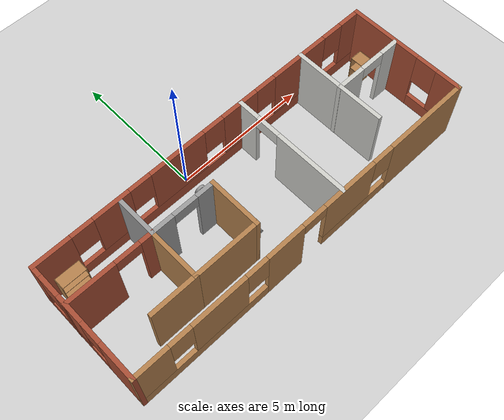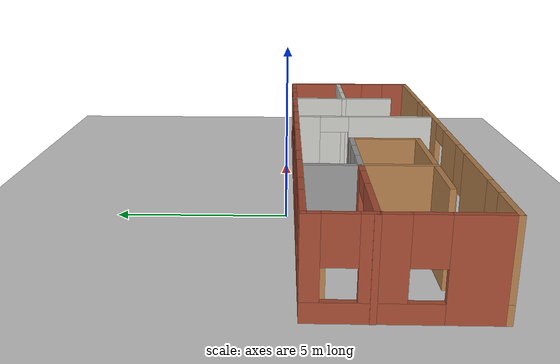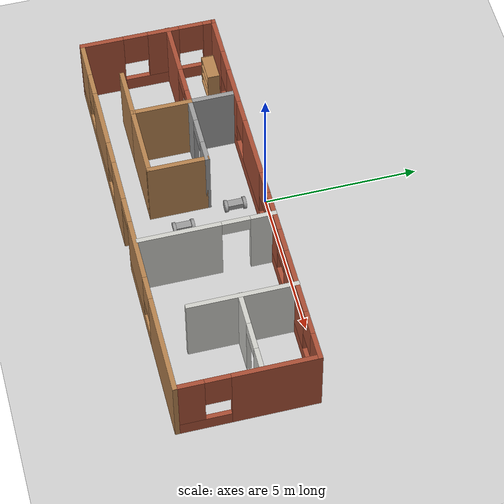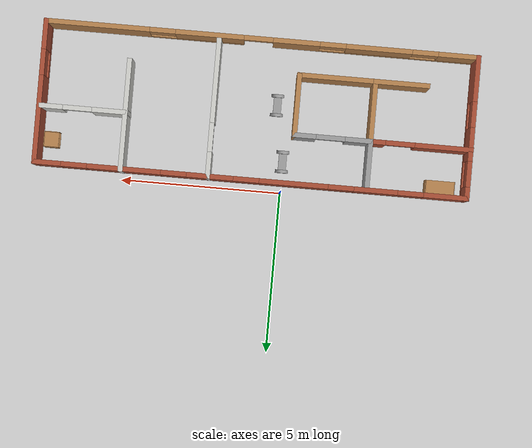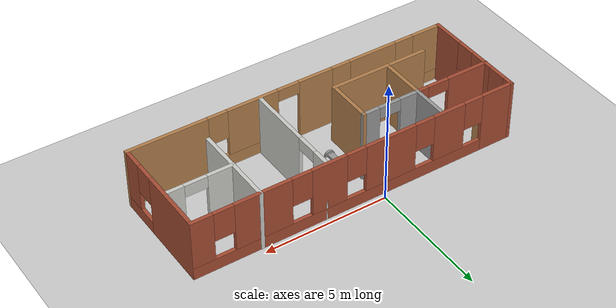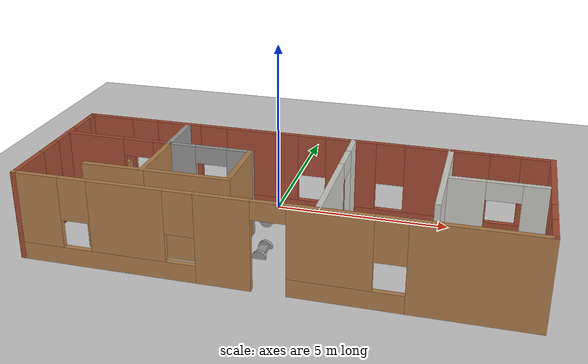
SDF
<sdf version="1.6">
 <world name="default">
  <plugin name="hello" filename="libhello.so"/>
  <light name="sun" type="directional">
   <pose>0 0 10 0 -0 0</pose>
   <diffuse>0.8 0.8 0.8 1</diffuse>
   <specular>0.2 0.2 0.2 1</specular>
   <attenuation>
    <range>1000</range>
    <constant>0.9</constant>
    <linear>0.01</linear>
    <quadratic>0.001</quadratic>
   </attenuation>
   <direction>-0.5 0.1 -0.9</direction>
  </light>
  <model name="ground_plane">
   <static>1</static>
   <link name="link">
    <collision name="collision">
     <geometry><plane><normal>0 0 1</normal><size>100 100</size></plane></geometry>
     <surface>
      <contact><collide_bitmask>65535</collide_bitmask></contact>
      <friction><ode><mu>100</mu><mu2>50</mu2></ode></friction>
     </surface>
    </collision>
    <visual name="visual">
     <cast_shadows>0</cast_shadows>
     <geometry><plane><normal>0 0 1</normal><size>100 100</size></plane></geometry>
     <material>
      <script><uri>file://media/materials/scripts/gazebo.material</uri><name>Gazebo/Grey</name></script>
     </material>
    </visual>
   </link>
  </model>
  <gravity>0 0 -9.8</gravity>
  <magnetic_field>6e-06 2.3e-05 -4.2e-05</magnetic_field>
  <atmosphere type="adiabatic"/>
  <physics name="default_physics" default="0" type="ode">
   <max_step_size>0.001</max_step_size>
   <real_time_factor>1</real_time_factor>
   <real_time_update_rate>1000</real_time_update_rate>
  </physics>
  <scene><ambient>0.4 0.4 0.4 1</ambient><background>0.7 0.7 0.7 1</background><shadows>1</shadows></scene>
  <spherical_coordinates>
   <surface_model>EARTH_WGS84</surface_model>
   <latitude_deg>0</latitude_deg>
   <longitude_deg>0</longitude_deg>
   <elevation>0</elevation>
   <heading_deg>0</heading_deg>
  </spherical_coordinates>
  <model name="building">
   <pose>0.94 -2.47 0 0 -0 0</pose>
   <link name="Wall_0">
    <pose>-6.67 -0.005 0 0 -0 1.5708</pose>
    <visual name="Wall_0_Visual_0">
     <pose>-1.5375 0 1.25 0 -0 0</pose>
     <geometry><box><size>1.425 0.15 2.5</size></box></geometry>
     <material>
      <script><uri>file://media/materials/scripts/gazebo.material</uri><name>Gazebo/Bricks</name></script>
      <ambient>0.435294 0.796078 0.67451 1</ambient>
     </material>
     <meta><layer>0</layer></meta>
    </visual>
    <collision name="Wall_0_Collision_0">
     <geometry><box><size>1.425 0.15 2.5</size></box></geometry>
     <pose>-1.5375 0 1.25 0 -0 0</pose>
    </collision>
    <visual name="Wall_0_Visual_1">
     <pose>0.7125 0 0.25 0 -0 0</pose>
     <geometry><box><size>3.075 0.15 0.5</size></box></geometry>
     <material>
      <script><uri>file://media/materials/scripts/gazebo.material</uri><name>Gazebo/Bricks</name></script>
      <ambient>0.435294 0.796078 0.67451 1</ambient>
     </material>
     <meta><layer>0</layer></meta>
    </visual>
    <collision name="Wall_0_Collision_1">
     <geometry><box><size>3.075 0.15 0.5</size></box></geometry>
     <pose>0.7125 0 0.25 0 -0 0</pose>
    </collision>
    <visual name="Wall_0_Visual_2">
     <pose>0.495 0 1.5 0 -0 0</pose>
     <geometry><box><size>1.04 0.15 2</size></box></geometry>
     <material>
      <script><uri>file://media/materials/scripts/gazebo.material</uri><name>Gazebo/Bricks</name></script>
      <ambient>0.435294 0.796078 0.67451 1</ambient>
     </material>
     <meta><layer>0</layer></meta>
    </visual>
    <collision name="Wall_0_Collision_2">
     <geometry><box><size>1.04 0.15 2</size></box></geometry>
     <pose>0.495 0 1.5 0 -0 0</pose>
    </collision>
    <visual name="Wall_0_Visual_3">
     <pose>2.0325 0 1.5 0 -0 0</pose>
     <geometry><box><size>0.435 0.15 2</size></box></geometry>
     <material>
      <script><uri>file://media/materials/scripts/gazebo.material</uri><name>Gazebo/Bricks</name></script>
      <ambient>0.435294 0.796078 0.67451 1</ambient>
     </material>
     <meta><layer>0</layer></meta>
    </visual>
    <collision name="Wall_0_Collision_3">
     <geometry><box><size>0.435 0.15 2</size></box></geometry>
     <pose>2.0325 0 1.5 0 -0 0</pose>
    </collision>
    <visual name="Wall_0_Visual_4">
     <pose>-0.425 0 1.9 0 -0 0</pose>
     <geometry><box><size>0.8 0.15 1.2</size></box></geometry>
     <material>
      <script><uri>file://media/materials/scripts/gazebo.material</uri><name>Gazebo/Bricks</name></script>
      <ambient>0.435294 0.796078 0.67451 1</ambient>
     </material>
     <meta><layer>0</layer></meta>
    </visual>
    <collision name="Wall_0_Collision_4">
     <geometry><box><size>0.8 0.15 1.2</size></box></geometry>
     <pose>-0.425 0 1.9 0 -0 0</pose>
    </collision>
    <visual name="Wall_0_Visual_5">
     <pose>1.415 0 1.9 0 -0 0</pose>
     <geometry><box><size>0.8 0.15 1.2</size></box></geometry>
     <material>
      <script><uri>file://media/materials/scripts/gazebo.material</uri><name>Gazebo/Bricks</name></script>
      <ambient>0.435294 0.796078 0.67451 1</ambient>
     </material>
     <meta><layer>0</layer></meta>
    </visual>
    <collision name="Wall_0_Collision_5">
     <geometry><box><size>0.8 0.15 1.2</size></box></geometry>
     <pose>1.415 0 1.9 0 -0 0</pose>
    </collision>
   </link>
   <link name="Wall_1">
    <pose>0.005 2.17 0 0 -0 0</pose>
    <visual name="Wall_1_Visual_0">
     <pose>-6.0475 0 1.25 0 -0 0</pose>
     <geometry><box><size>1.405 0.15 2.5</size></box></geometry>
     <material>
      <script><uri>file://media/materials/scripts/gazebo.material</uri><name>Gazebo/Bricks</name></script>
      <ambient>1 1 1 1</ambient>
     </material>
     <meta><layer>0</layer></meta>
    </visual>
    <collision name="Wall_1_Collision_0">
     <geometry><box><size>1.405 0.15 2.5</size></box></geometry>
     <pose>-6.0475 0 1.25 0 -0 0</pose>
    </collision>
    <visual name="Wall_1_Visual_1">
     <pose>0.7025 0 0.25 0 -0 0</pose>
     <geometry><box><size>12.095 0.15 0.5</size></box></geometry>
     <material>
      <script><uri>file://media/materials/scripts/gazebo.material</uri><name>Gazebo/Bricks</name></script>
      <ambient>1 1 1 1</ambient>
     </material>
     <meta><layer>0</layer></meta>
    </visual>
    <collision name="Wall_1_Collision_1">
     <geometry><box><size>12.095 0.15 0.5</size></box></geometry>
     <pose>0.7025 0 0.25 0 -0 0</pose>
    </collision>
    <visual name="Wall_1_Visual_2">
     <pose>-3.87 0 1.5 0 -0 0</pose>
     <geometry><box><size>1.35 0.15 2</size></box></geometry>
     <material>
      <script><uri>file://media/materials/scripts/gazebo.material</uri><name>Gazebo/Bricks</name></script>
      <ambient>1 1 1 1</ambient>
     </material>
     <meta><layer>0</layer></meta>
    </visual>
    <collision name="Wall_1_Collision_2">
     <geometry><box><size>1.35 0.15 2</size></box></geometry>
     <pose>-3.87 0 1.5 0 -0 0</pose>
    </collision>
    <visual name="Wall_1_Visual_3">
     <pose>-1.33 0 1.5 0 -0 0</pose>
     <geometry><box><size>2.13 0.15 2</size></box></geometry>
     <material>
      <script><uri>file://media/materials/scripts/gazebo.material</uri><name>Gazebo/Bricks</name></script>
      <ambient>1 1 1 1</ambient>
     </material>
     <meta><layer>0</layer></meta>
    </visual>
    <collision name="Wall_1_Collision_3">
     <geometry><box><size>2.13 0.15 2</size></box></geometry>
     <pose>-1.33 0 1.5 0 -0 0</pose>
    </collision>
    <visual name="Wall_1_Visual_4">
     <pose>1.255 0 1.5 0 -0 0</pose>
     <geometry><box><size>1.44 0.15 2</size></box></geometry>
     <material>
      <script><uri>file://media/materials/scripts/gazebo.material</uri><name>Gazebo/Bricks</name></script>
      <ambient>1 1 1 1</ambient>
     </material>
     <meta><layer>0</layer></meta>
    </visual>
    <collision name="Wall_1_Collision_4">
     <geometry><box><size>1.44 0.15 2</size></box></geometry>
     <pose>1.255 0 1.5 0 -0 0</pose>
    </collision>
    <visual name="Wall_1_Visual_5">
     <pose>3.915 0 1.5 0 -0 0</pose>
     <geometry><box><size>2.28 0.15 2</size></box></geometry>
     <material>
      <script><uri>file://media/materials/scripts/gazebo.material</uri><name>Gazebo/Bricks</name></script>
      <ambient>1 1 1 1</ambient>
     </material>
     <meta><layer>0</layer></meta>
    </visual>
    <collision name="Wall_1_Collision_5">
     <geometry><box><size>2.28 0.15 2</size></box></geometry>
     <pose>3.915 0 1.5 0 -0 0</pose>
    </collision>
    <visual name="Wall_1_Visual_6">
     <pose>6.3025 0 1.5 0 -0 0</pose>
     <geometry><box><size>0.895 0.15 2</size></box></geometry>
     <material>
      <script><uri>file://media/materials/scripts/gazebo.material</uri><name>Gazebo/Bricks</name></script>
      <ambient>1 1 1 1</ambient>
     </material>
     <meta><layer>0</layer></meta>
    </visual>
    <collision name="Wall_1_Collision_6">
     <geometry><box><size>0.895 0.15 2</size></box></geometry>
     <pose>6.3025 0 1.5 0 -0 0</pose>
    </collision>
    <visual name="Wall_1_Visual_7">
     <pose>-4.945 0 1.9 0 -0 0</pose>
     <geometry><box><size>0.8 0.15 1.2</size></box></geometry>
     <material>
      <script><uri>file://media/materials/scripts/gazebo.material</uri><name>Gazebo/Bricks</name></script>
      <ambient>1 1 1 1</ambient>
     </material>
     <meta><layer>0</layer></meta>
    </visual>
    <collision name="Wall_1_Collision_7">
     <geometry><box><size>0.8 0.15 1.2</size></box></geometry>
     <pose>-4.945 0 1.9 0 -0 0</pose>
    </collision>
    <visual name="Wall_1_Visual_8">
     <pose>-2.795 0 1.9 0 -0 0</pose>
     <geometry><box><size>0.8 0.15 1.2</size></box></geometry>
     <material>
      <script><uri>file://media/materials/scripts/gazebo.material</uri><name>Gazebo/Bricks</name></script>
      <ambient>1 1 1 1</ambient>
     </material>
     <meta><layer>0</layer></meta>
    </visual>
    <collision name="Wall_1_Collision_8">
     <geometry><box><size>0.8 0.15 1.2</size></box></geometry>
     <pose>-2.795 0 1.9 0 -0 0</pose>
    </collision>
    <visual name="Wall_1_Visual_9">
     <pose>0.135 0 1.9 0 -0 0</pose>
     <geometry><box><size>0.8 0.15 1.2</size></box></geometry>
     <material>
      <script><uri>file://media/materials/scripts/gazebo.material</uri><name>Gazebo/Bricks</name></script>
      <ambient>1 1 1 1</ambient>
     </material>
     <meta><layer>0</layer></meta>
    </visual>
    <collision name="Wall_1_Collision_9">
     <geometry><box><size>0.8 0.15 1.2</size></box></geometry>
     <pose>0.135 0 1.9 0 -0 0</pose>
    </collision>
    <visual name="Wall_1_Visual_10">
     <pose>2.375 0 1.9 0 -0 0</pose>
     <geometry><box><size>0.8 0.15 1.2</size></box></geometry>
     <material>
      <script><uri>file://media/materials/scripts/gazebo.material</uri><name>Gazebo/Bricks</name></script>
      <ambient>1 1 1 1</ambient>
     </material>
     <meta><layer>0</layer></meta>
    </visual>
    <collision name="Wall_1_Collision_10">
     <geometry><box><size>0.8 0.15 1.2</size></box></geometry>
     <pose>2.375 0 1.9 0 -0 0</pose>
    </collision>
    <visual name="Wall_1_Visual_11">
     <pose>5.455 0 1.9 0 -0 0</pose>
     <geometry><box><size>0.8 0.15 1.2</size></box></geometry>
     <material>
      <script><uri>file://media/materials/scripts/gazebo.material</uri><name>Gazebo/Bricks</name></script>
      <ambient>1 1 1 1</ambient>
     </material>
     <meta><layer>0</layer></meta>
    </visual>
    <collision name="Wall_1_Collision_11">
     <geometry><box><size>0.8 0.15 1.2</size></box></geometry>
     <pose>5.455 0 1.9 0 -0 0</pose>
    </collision>
   </link>
   <link name="Wall_11">
    <collision name="Wall_11_Collision">
     <geometry><box><size>2 0.15 2.5</size></box></geometry>
     <pose>0 0 1.25 0 -0 0</pose>
    </collision>
    <visual name="Wall_11_Visual">
     <pose>0 0 1.25 0 -0 0</pose>
     <geometry><box><size>2 0.15 2.5</size></box></geometry>
     <material>
      <script><uri>file://media/materials/scripts/gazebo.material</uri><name>Gazebo/Wood</name></script>
      <ambient>1 1 1 1</ambient>
     </material>
     <meta><layer>0</layer></meta>
    </visual>
    <pose>-3.58 -0.255 0 0 0 -1.5708</pose>
   </link>
   <link name="Wall_15">
    <collision name="Wall_15_Collision">
     <geometry><box><size>1.75 0.15 2.5</size></box></geometry>
     <pose>0 0 1.25 0 -0 0</pose>
    </collision>
    <visual name="Wall_15_Visual">
     <pose>0 0 1.25 0 -0 0</pose>
     <geometry><box><size>1.75 0.15 2.5</size></box></geometry>
     <material>
      <script><uri>file://media/materials/scripts/gazebo.material</uri><name>Gazebo/Wood</name></script>
      <ambient>1 1 1 1</ambient>
     </material>
     <meta><layer>0</layer></meta>
    </visual>
    <pose>-4.38 -1.18 0 0 -0 3.14159</pose>
   </link>
   <link name="Wall_17">
    <pose>-2.405 0.67 0 0 -0 0</pose>
    <visual name="Wall_17_Visual_0">
     <pose>-0.8175 0 1.25 0 -0 0</pose>
     <geometry><box><size>0.865 0.15 2.5</size></box></geometry>
     <material>
      <script><uri>file://media/materials/scripts/gazebo.material</uri><name>Gazebo/Grey</name></script>
      <ambient>1 1 1 1</ambient>
     </material>
     <meta><layer>0</layer></meta>
    </visual>
    <collision name="Wall_17_Collision_0">
     <geometry><box><size>0.865 0.15 2.5</size></box></geometry>
     <pose>-0.8175 0 1.25 0 -0 0</pose>
    </collision>
    <visual name="Wall_17_Visual_1">
     <pose>0.8825 0 1.25 0 -0 0</pose>
     <geometry><box><size>0.735 0.15 2.5</size></box></geometry>
     <material>
      <script><uri>file://media/materials/scripts/gazebo.material</uri><name>Gazebo/Grey</name></script>
      <ambient>1 1 1 1</ambient>
     </material>
     <meta><layer>0</layer></meta>
    </visual>
    <collision name="Wall_17_Collision_1">
     <geometry><box><size>0.735 0.15 2.5</size></box></geometry>
     <pose>0.8825 0 1.25 0 -0 0</pose>
    </collision>
    <visual name="Wall_17_Visual_2">
     <pose>0.065 0 2.25 0 -0 0</pose>
     <geometry><box><size>0.9 0.15 0.5</size></box></geometry>
     <material>
      <script><uri>file://media/materials/scripts/gazebo.material</uri><name>Gazebo/Grey</name></script>
      <ambient>1 1 1 1</ambient>
     </material>
     <meta><layer>0</layer></meta>
    </visual>
    <collision name="Wall_17_Collision_2">
     <geometry><box><size>0.9 0.15 0.5</size></box></geometry>
     <pose>0.065 0 2.25 0 -0 0</pose>
    </collision>
   </link>
   <link name="Wall_19">
    <pose>1.33 -0.005 0 0 0 -1.5708</pose>
    <visual name="Wall_19_Visual_0">
     <pose>-1.8325 0 1.25 0 -0 0</pose>
     <geometry><box><size>0.835 0.15 2.5</size></box></geometry>
     <material>
      <script><uri>file://media/materials/scripts/gazebo.material</uri><name>Gazebo/CeilingTiled</name></script>
      <ambient>1 0.764706 0.305882 1</ambient>
     </material>
     <meta><layer>0</layer></meta>
    </visual>
    <collision name="Wall_19_Collision_0">
     <geometry><box><size>0.835 0.15 2.5</size></box></geometry>
     <pose>-1.8325 0 1.25 0 -0 0</pose>
    </collision>
    <visual name="Wall_19_Visual_1">
     <pose>0.8675 0 1.25 0 -0 0</pose>
     <geometry><box><size>2.765 0.15 2.5</size></box></geometry>
     <material>
      <script><uri>file://media/materials/scripts/gazebo.material</uri><name>Gazebo/CeilingTiled</name></script>
      <ambient>1 0.764706 0.305882 1</ambient>
     </material>
     <meta><layer>0</layer></meta>
    </visual>
    <collision name="Wall_19_Collision_1">
     <geometry><box><size>2.765 0.15 2.5</size></box></geometry>
     <pose>0.8675 0 1.25 0 -0 0</pose>
    </collision>
    <visual name="Wall_19_Visual_2">
     <pose>-0.965 0 2.25 0 -0 0</pose>
     <geometry><box><size>0.9 0.15 0.5</size></box></geometry>
     <material>
      <script><uri>file://media/materials/scripts/gazebo.material</uri><name>Gazebo/CeilingTiled</name></script>
      <ambient>1 0.764706 0.305882 1</ambient>
     </material>
     <meta><layer>0</layer></meta>
    </visual>
    <collision name="Wall_19_Collision_2">
     <geometry><box><size>0.9 0.15 0.5</size></box></geometry>
     <pose>-0.965 0 2.25 0 -0 0</pose>
    </collision>
   </link>
   <link name="Wall_2">
    <pose>6.68 -0.005 0 0 0 -1.5708</pose>
    <visual name="Wall_2_Visual_0">
     <pose>-0.8775 0 1.25 0 -0 0</pose>
     <geometry><box><size>2.745 0.15 2.5</size></box></geometry>
     <material>
      <script><uri>file://media/materials/scripts/gazebo.material</uri><name>Gazebo/Bricks</name></script>
      <ambient>1 1 1 1</ambient>
     </material>
     <meta><layer>0</layer></meta>
    </visual>
    <collision name="Wall_2_Collision_0">
     <geometry><box><size>2.745 0.15 2.5</size></box></geometry>
     <pose>-0.8775 0 1.25 0 -0 0</pose>
    </collision>
    <visual name="Wall_2_Visual_1">
     <pose>1.3725 0 0.25 0 -0 0</pose>
     <geometry><box><size>1.755 0.15 0.5</size></box></geometry>
     <material>
      <script><uri>file://media/materials/scripts/gazebo.material</uri><name>Gazebo/Bricks</name></script>
      <ambient>1 1 1 1</ambient>
     </material>
     <meta><layer>0</layer></meta>
    </visual>
    <collision name="Wall_2_Collision_1">
     <geometry><box><size>1.755 0.15 0.5</size></box></geometry>
     <pose>1.3725 0 0.25 0 -0 0</pose>
    </collision>
    <visual name="Wall_2_Visual_2">
     <pose>1.7725 0 1.5 0 -0 0</pose>
     <geometry><box><size>0.955 0.15 2</size></box></geometry>
     <material>
      <script><uri>file://media/materials/scripts/gazebo.material</uri><name>Gazebo/Bricks</name></script>
      <ambient>1 1 1 1</ambient>
     </material>
     <meta><layer>0</layer></meta>
    </visual>
    <collision name="Wall_2_Collision_2">
     <geometry><box><size>0.955 0.15 2</size></box></geometry>
     <pose>1.7725 0 1.5 0 -0 0</pose>
    </collision>
    <visual name="Wall_2_Visual_3">
     <pose>0.895 0 1.9 0 -0 0</pose>
     <geometry><box><size>0.8 0.15 1.2</size></box></geometry>
     <material>
      <script><uri>file://media/materials/scripts/gazebo.material</uri><name>Gazebo/Bricks</name></script>
      <ambient>1 1 1 1</ambient>
     </material>
     <meta><layer>0</layer></meta>
    </visual>
    <collision name="Wall_2_Collision_3">
     <geometry><box><size>0.8 0.15 1.2</size></box></geometry>
     <pose>0.895 0 1.9 0 -0 0</pose>
    </collision>
   </link>
   <link name="Wall_21">
    <collision name="Wall_21_Collision">
     <geometry><box><size>2.5 0.15 2.5</size></box></geometry>
     <pose>0 0 1.25 0 -0 0</pose>
    </collision>
    <visual name="Wall_21_Visual">
     <pose>0 0 1.25 0 -0 0</pose>
     <geometry><box><size>2.5 0.15 2.5</size></box></geometry>
     <material>
      <script><uri>file://media/materials/scripts/gazebo.material</uri><name>Gazebo/Wood</name></script>
      <ambient>1 1 1 1</ambient>
     </material>
     <meta><layer>0</layer></meta>
    </visual>
    <pose>-2.405 -1.18 0 0 -0 0</pose>
   </link>
   <link name="Wall_23">
    <collision name="Wall_23_Collision">
     <geometry><box><size>2 0.15 2.5</size></box></geometry>
     <pose>0 0 1.25 0 -0 0</pose>
    </collision>
    <visual name="Wall_23_Visual">
     <pose>0 0 1.25 0 -0 0</pose>
     <geometry><box><size>2 0.15 2.5</size></box></geometry>
     <material>
      <script><uri>file://media/materials/scripts/gazebo.material</uri><name>Gazebo/Wood</name></script>
      <ambient>1 1 1 1</ambient>
     </material>
     <meta><layer>0</layer></meta>
    </visual>
    <pose>-1.23 -0.255 0 0 -0 1.5708</pose>
   </link>
   <link name="Wall_25">
    <collision name="Wall_25_Collision">
     <geometry><box><size>3.5 0.15 2.5</size></box></geometry>
     <pose>0 0 1.25 0 -0 0</pose>
    </collision>
    <visual name="Wall_25_Visual">
     <pose>0 0 1.25 0 -0 0</pose>
     <geometry><box><size>3.5 0.15 2.5</size></box></geometry>
     <material>
      <script><uri>file://media/materials/scripts/gazebo.material</uri><name>Gazebo/CeilingTiled</name></script>
      <ambient>1 0.764706 0.305882 1</ambient>
     </material>
     <meta><layer>0</layer></meta>
    </visual>
    <pose>4.02 0.505 0 0 0 -1.5708</pose>
   </link>
   <link name="Wall_27">
    <pose>5.31 0.43 0 0 -0 0</pose>
    <visual name="Wall_27_Visual_0">
     <pose>-0.8175 0 1.25 0 -0 0</pose>
     <geometry><box><size>1.115 0.15 2.5</size></box></geometry>
     <material>
      <script><uri>file://media/materials/scripts/gazebo.material</uri><name>Gazebo/CeilingTiled</name></script>
      <ambient>0.996078 0.47451 0.0196078 1</ambient>
     </material>
     <meta><layer>0</layer></meta>
    </visual>
    <collision name="Wall_27_Collision_0">
     <geometry><box><size>1.115 0.15 2.5</size></box></geometry>
     <pose>-0.8175 0 1.25 0 -0 0</pose>
    </collision>
    <visual name="Wall_27_Visual_1">
     <pose>1.0075 0 1.25 0 -0 0</pose>
     <geometry><box><size>0.735 0.15 2.5</size></box></geometry>
     <material>
      <script><uri>file://media/materials/scripts/gazebo.material</uri><name>Gazebo/CeilingTiled</name></script>
      <ambient>0.996078 0.47451 0.0196078 1</ambient>
     </material>
     <meta><layer>0</layer></meta>
    </visual>
    <collision name="Wall_27_Collision_1">
     <geometry><box><size>0.735 0.15 2.5</size></box></geometry>
     <pose>1.0075 0 1.25 0 -0 0</pose>
    </collision>
    <visual name="Wall_27_Visual_2">
     <pose>0.19 0 2.25 0 -0 0</pose>
     <geometry><box><size>0.9 0.15 0.5</size></box></geometry>
     <material>
      <script><uri>file://media/materials/scripts/gazebo.material</uri><name>Gazebo/CeilingTiled</name></script>
      <ambient>0.996078 0.47451 0.0196078 1</ambient>
     </material>
     <meta><layer>0</layer></meta>
    </visual>
    <collision name="Wall_27_Collision_2">
     <geometry><box><size>0.9 0.15 0.5</size></box></geometry>
     <pose>0.19 0 2.25 0 -0 0</pose>
    </collision>
   </link>
   <link name="Wall_3">
    <pose>0.005 -2.18 0 0 -0 3.14159</pose>
    <visual name="Wall_3_Visual_0">
     <pose>-5.1175 0 1.25 0 -0 0</pose>
     <geometry><box><size>3.265 0.15 2.5</size></box></geometry>
     <material>
      <script><uri>file://media/materials/scripts/gazebo.material</uri><name>Gazebo/Wood</name></script>
      <ambient>1 0.203922 0.54902 1</ambient>
     </material>
     <meta><layer>0</layer></meta>
    </visual>
    <collision name="Wall_3_Collision_0">
     <geometry><box><size>3.265 0.15 2.5</size></box></geometry>
     <pose>-5.1175 0 1.25 0 -0 0</pose>
    </collision>
    <visual name="Wall_3_Visual_1">
     <pose>1.06 0 1.25 0 -0 0</pose>
     <geometry><box><size>1.45 0.15 2.5</size></box></geometry>
     <material>
      <script><uri>file://media/materials/scripts/gazebo.material</uri><name>Gazebo/Wood</name></script>
      <ambient>1 0.203922 0.54902 1</ambient>
     </material>
     <meta><layer>0</layer></meta>
    </visual>
    <collision name="Wall_3_Collision_1">
     <geometry><box><size>1.45 0.15 2.5</size></box></geometry>
     <pose>1.06 0 1.25 0 -0 0</pose>
    </collision>
    <visual name="Wall_3_Visual_2">
     <pose>-2.025 0 0.25 0 -0 0</pose>
     <geometry><box><size>2.92 0.15 0.5</size></box></geometry>
     <material>
      <script><uri>file://media/materials/scripts/gazebo.material</uri><name>Gazebo/Wood</name></script>
      <ambient>1 0.203922 0.54902 1</ambient>
     </material>
     <meta><layer>0</layer></meta>
    </visual>
    <collision name="Wall_3_Collision_2">
     <geometry><box><size>2.92 0.15 0.5</size></box></geometry>
     <pose>-2.025 0 0.25 0 -0 0</pose>
    </collision>
    <visual name="Wall_3_Visual_3">
     <pose>4.2675 0 0.25 0 -0 0</pose>
     <geometry><box><size>4.965 0.15 0.5</size></box></geometry>
     <material>
      <script><uri>file://media/materials/scripts/gazebo.material</uri><name>Gazebo/Wood</name></script>
      <ambient>1 0.203922 0.54902 1</ambient>
     </material>
     <meta><layer>0</layer></meta>
    </visual>
    <collision name="Wall_3_Collision_3">
     <geometry><box><size>4.965 0.15 0.5</size></box></geometry>
     <pose>4.2675 0 0.25 0 -0 0</pose>
    </collision>
    <visual name="Wall_3_Visual_4">
     <pose>-1.625 0 1.5 0 -0 0</pose>
     <geometry><box><size>2.12 0.15 2</size></box></geometry>
     <material>
      <script><uri>file://media/materials/scripts/gazebo.material</uri><name>Gazebo/Wood</name></script>
      <ambient>1 0.203922 0.54902 1</ambient>
     </material>
     <meta><layer>0</layer></meta>
    </visual>
    <collision name="Wall_3_Collision_4">
     <geometry><box><size>2.12 0.15 2</size></box></geometry>
     <pose>-1.625 0 1.5 0 -0 0</pose>
    </collision>
    <visual name="Wall_3_Visual_5">
     <pose>-1.625 0 1.5 0 -0 0</pose>
     <geometry><box><size>2.12 0.15 2</size></box></geometry>
     <material>
      <script><uri>file://media/materials/scripts/gazebo.material</uri><name>Gazebo/Wood</name></script>
      <ambient>1 0.203922 0.54902 1</ambient>
     </material>
     <meta><layer>0</layer></meta>
    </visual>
    <collision name="Wall_3_Collision_5">
     <geometry><box><size>2.12 0.15 2</size></box></geometry>
     <pose>-1.625 0 1.5 0 -0 0</pose>
    </collision>
    <visual name="Wall_3_Visual_6">
     <pose>3.61 0 1.5 0 -0 0</pose>
     <geometry><box><size>2.05 0.15 2</size></box></geometry>
     <material>
      <script><uri>file://media/materials/scripts/gazebo.material</uri><name>Gazebo/Wood</name></script>
      <ambient>1 0.203922 0.54902 1</ambient>
     </material>
     <meta><layer>0</layer></meta>
    </visual>
    <collision name="Wall_3_Collision_6">
     <geometry><box><size>2.05 0.15 2</size></box></geometry>
     <pose>3.61 0 1.5 0 -0 0</pose>
    </collision>
    <visual name="Wall_3_Visual_7">
     <pose>6.0925 0 1.5 0 -0 0</pose>
     <geometry><box><size>1.315 0.15 2</size></box></geometry>
     <material>
      <script><uri>file://media/materials/scripts/gazebo.material</uri><name>Gazebo/Wood</name></script>
      <ambient>1 0.203922 0.54902 1</ambient>
     </material>
     <meta><layer>0</layer></meta>
    </visual>
    <collision name="Wall_3_Collision_7">
     <geometry><box><size>1.315 0.15 2</size></box></geometry>
     <pose>6.0925 0 1.5 0 -0 0</pose>
    </collision>
    <visual name="Wall_3_Visual_8">
     <pose>-3.085 0 1.9 0 -0 0</pose>
     <geometry><box><size>0.8 0.15 1.2</size></box></geometry>
     <material>
      <script><uri>file://media/materials/scripts/gazebo.material</uri><name>Gazebo/Wood</name></script>
      <ambient>1 0.203922 0.54902 1</ambient>
     </material>
     <meta><layer>0</layer></meta>
    </visual>
    <collision name="Wall_3_Collision_8">
     <geometry><box><size>0.8 0.15 1.2</size></box></geometry>
     <pose>-3.085 0 1.9 0 -0 0</pose>
    </collision>
    <visual name="Wall_3_Visual_9">
     <pose>2.185 0 1.9 0 -0 0</pose>
     <geometry><box><size>0.8 0.15 1.2</size></box></geometry>
     <material>
      <script><uri>file://media/materials/scripts/gazebo.material</uri><name>Gazebo/Wood</name></script>
      <ambient>1 0.203922 0.54902 1</ambient>
     </material>
     <meta><layer>0</layer></meta>
    </visual>
    <collision name="Wall_3_Collision_9">
     <geometry><box><size>0.8 0.15 1.2</size></box></geometry>
     <pose>2.185 0 1.9 0 -0 0</pose>
    </collision>
    <visual name="Wall_3_Visual_10">
     <pose>5.035 0 1.9 0 -0 0</pose>
     <geometry><box><size>0.8 0.15 1.2</size></box></geometry>
     <material>
      <script><uri>file://media/materials/scripts/gazebo.material</uri><name>Gazebo/Wood</name></script>
      <ambient>1 0.203922 0.54902 1</ambient>
     </material>
     <meta><layer>0</layer></meta>
    </visual>
    <collision name="Wall_3_Collision_10">
     <geometry><box><size>0.8 0.15 1.2</size></box></geometry>
     <pose>5.035 0 1.9 0 -0 0</pose>
    </collision>
    <visual name="Wall_3_Visual_11">
     <pose>-0.115 0 2.25 0 -0 0</pose>
     <geometry><box><size>0.9 0.15 0.5</size></box></geometry>
     <material>
      <script><uri>file://media/materials/scripts/gazebo.material</uri><name>Gazebo/Wood</name></script>
      <ambient>1 0.203922 0.54902 1</ambient>
     </material>
     <meta><layer>0</layer></meta>
    </visual>
    <collision name="Wall_3_Collision_11">
     <geometry><box><size>0.9 0.15 0.5</size></box></geometry>
     <pose>-0.115 0 2.25 0 -0 0</pose>
    </collision>
    <visual name="Wall_3_Visual_12">
     <pose>-0.115 0 2.25 0 -0 0</pose>
     <geometry><box><size>0.9 0.15 0.5</size></box></geometry>
     <material>
      <script><uri>file://media/materials/scripts/gazebo.material</uri><name>Gazebo/Wood</name></script>
      <ambient>1 0.203922 0.54902 1</ambient>
     </material>
     <meta><layer>0</layer></meta>
    </visual>
    <collision name="Wall_3_Collision_12">
     <geometry><box><size>0.9 0.15 0.5</size></box></geometry>
     <pose>-0.115 0 2.25 0 -0 0</pose>
    </collision>
   </link>
   <link name="Wall_7">
    <pose>-5.13 0.67 0 0 -0 0</pose>
    <visual name="Wall_7_Visual_0">
     <pose>-0.7175 0 1.25 0 -0 0</pose>
     <geometry><box><size>1.815 0.15 2.5</size></box></geometry>
     <material>
      <script><uri>file://media/materials/scripts/gazebo.material</uri><name>Gazebo/Bricks</name></script>
      <ambient>0.435294 0.796078 0.67451 1</ambient>
     </material>
     <meta><layer>0</layer></meta>
    </visual>
    <collision name="Wall_7_Collision_0">
     <geometry><box><size>1.815 0.15 2.5</size></box></geometry>
     <pose>-0.7175 0 1.25 0 -0 0</pose>
    </collision>
    <visual name="Wall_7_Visual_1">
     <pose>1.3575 0 1.25 0 -0 0</pose>
     <geometry><box><size>0.535 0.15 2.5</size></box></geometry>
     <material>
      <script><uri>file://media/materials/scripts/gazebo.material</uri><name>Gazebo/Bricks</name></script>
      <ambient>0.435294 0.796078 0.67451 1</ambient>
     </material>
     <meta><layer>0</layer></meta>
    </visual>
    <collision name="Wall_7_Collision_1">
     <geometry><box><size>0.535 0.15 2.5</size></box></geometry>
     <pose>1.3575 0 1.25 0 -0 0</pose>
    </collision>
    <visual name="Wall_7_Visual_2">
     <pose>0.64 0 2.25 0 -0 0</pose>
     <geometry><box><size>0.9 0.15 0.5</size></box></geometry>
     <material>
      <script><uri>file://media/materials/scripts/gazebo.material</uri><name>Gazebo/Bricks</name></script>
      <ambient>0.435294 0.796078 0.67451 1</ambient>
     </material>
     <meta><layer>0</layer></meta>
    </visual>
    <collision name="Wall_7_Collision_2">
     <geometry><box><size>0.9 0.15 0.5</size></box></geometry>
     <pose>0.64 0 2.25 0 -0 0</pose>
    </collision>
   </link>
   <link name="Wall_9">
    <collision name="Wall_9_Collision">
     <geometry><box><size>1.5 0.15 2.5</size></box></geometry>
     <pose>0 0 1.25 0 -0 0</pose>
    </collision>
    <visual name="Wall_9_Visual">
     <pose>0 0 1.25 0 -0 0</pose>
     <geometry><box><size>1.5 0.15 2.5</size></box></geometry>
     <material>
      <script><uri>file://media/materials/scripts/gazebo.material</uri><name>Gazebo/Grey</name></script>
      <ambient>1 1 1 1</ambient>
     </material>
     <meta><layer>0</layer></meta>
    </visual>
    <pose>-3.58 1.345 0 0 -0 1.5708</pose>
   </link>
   <static>1</static>
  </model>
  <model name="cabinet">
   <static>1</static>
   <link name="cabinet_bottom_plate">
    <inertial>
     <pose>0 0 -1 0 -0 0</pose>
     <inertia><ixx>2.05</ixx><ixy>0</ixy><ixz>0</ixz><iyy>2.05</iyy><iyz>0</iyz><izz>2.05</izz></inertia>
     <mass>25</mass>
    </inertial>
    <collision name="cabinet_bottom_plate_geom">
     <pose>0 0 0.01 0 -0 0</pose>
     <geometry><box><size>0.45 0.45 0.02</size></box></geometry>
    </collision>
    <visual name="cabinet_bottom_plate_geom_visual">
     <pose>0 0 0.01 0 -0 0</pose>
     <geometry><box><size>0.45 0.45 0.02</size></box></geometry>
     <material>
      <script><uri>file://media/materials/scripts/gazebo.material</uri><name>Gazebo/Wood</name></script>
     </material>
    </visual>
    <collision name="cabinet_bottom_plate_geom_cabinet_back_plate">
     <pose>0.235 0 0.51 0 -0 0</pose>
     <geometry><box><size>0.02 0.45 1.02</size></box></geometry>
    </collision>
    <visual name="cabinet_bottom_plate_geom_cabinet_back_plate_visual">
     <pose>0.235 0 0.51 0 -0 0</pose>
     <geometry><box><size>0.02 0.45 1.02</size></box></geometry>
     <material>
      <script><uri>file://media/materials/scripts/gazebo.material</uri><name>Gazebo/Wood</name></script>
     </material>
    </visual>
    <collision name="cabinet_bottom_plate_geom_cabinet_left_plate">
     <pose>0 0.235 0.51 0 -0 0</pose>
     <geometry><box><size>0.45 0.02 1.02</size></box></geometry>
    </collision>
    <visual name="cabinet_bottom_plate_geom_cabinet_left_plate_visual">
     <pose>0 0.235 0.51 0 -0 0</pose>
     <geometry><box><size>0.45 0.02 1.02</size></box></geometry>
     <material>
      <script><uri>file://media/materials/scripts/gazebo.material</uri><name>Gazebo/Wood</name></script>
     </material>
    </visual>
    <collision name="cabinet_bottom_plate_geom_cabinet_middle_plate">
     <pose>0 0 0.51 0 -0 0</pose>
     <geometry><box><size>0.45 0.45 0.02</size></box></geometry>
    </collision>
    <visual name="cabinet_bottom_plate_geom_cabinet_middle_plate_visual">
     <pose>0 0 0.51 0 -0 0</pose>
     <geometry><box><size>0.45 0.45 0.02</size></box></geometry>
     <material>
      <script><uri>file://media/materials/scripts/gazebo.material</uri><name>Gazebo/Wood</name></script>
     </material>
    </visual>
    <collision name="cabinet_bottom_plate_geom_cabinet_right_plate">
     <pose>0 -0.235 0.51 0 -0 0</pose>
     <geometry><box><size>0.45 0.02 1.02</size></box></geometry>
    </collision>
    <visual name="cabinet_bottom_plate_geom_cabinet_right_plate_visual">
     <pose>0 -0.235 0.51 0 -0 0</pose>
     <geometry><box><size>0.45 0.02 1.02</size></box></geometry>
     <material>
      <script><uri>file://media/materials/scripts/gazebo.material</uri><name>Gazebo/Wood</name></script>
     </material>
    </visual>
    <collision name="cabinet_bottom_plate_geom_cabinet_top_plate">
     <pose>0 0 1.01 0 -0 0</pose>
     <geometry><box><size>0.45 0.45 0.02</size></box></geometry>
    </collision>
    <visual name="cabinet_bottom_plate_geom_cabinet_top_plate_visual">
     <pose>0 0 1.01 0 -0 0</pose>
     <geometry><box><size>0.45 0.45 0.02</size></box></geometry>
     <material>
      <script><uri>file://media/materials/scripts/gazebo.material</uri><name>Gazebo/Wood</name></script>
     </material>
    </visual>
   </link>
   <pose>7.23865 -1.06391 0 0 -0 0</pose>
  </model>
  <model name="bookshelf">
   <static>1</static>
   <link name="link">
    <inertial><mass>1</mass></inertial>
    <collision name="back">
     <pose>0 0.005 0.6 0 -0 0</pose>
     <geometry><box><size>0.9 0.01 1.2</size></box></geometry>
    </collision>
    <visual name="visual1">
     <pose>0 0.005 0.6 0 -0 0</pose>
     <geometry><box><size>0.9 0.01 1.2</size></box></geometry>
     <material>
      <script><uri>file://media/materials/scripts/gazebo.material</uri><name>Gazebo/Wood</name></script>
     </material>
    </visual>
    <collision name="left_side">
     <pose>0.45 -0.195 0.6 0 -0 0</pose>
     <geometry><box><size>0.02 0.4 1.2</size></box></geometry>
    </collision>
    <visual name="visual2">
     <pose>0.45 -0.195 0.6 0 -0 0</pose>
     <geometry><box><size>0.02 0.4 1.2</size></box></geometry>
     <material>
      <script><uri>file://media/materials/scripts/gazebo.material</uri><name>Gazebo/Wood</name></script>
     </material>
    </visual>
    <collision name="right_side">
     <pose>-0.45 -0.195 0.6 0 -0 0</pose>
     <geometry><box><size>0.02 0.4 1.2</size></box></geometry>
    </collision>
    <visual name="visual3">
     <pose>-0.45 -0.195 0.6 0 -0 0</pose>
     <geometry><box><size>0.02 0.4 1.2</size></box></geometry>
     <material>
      <script><uri>file://media/materials/scripts/gazebo.material</uri><name>Gazebo/Wood</name></script>
     </material>
    </visual>
    <collision name="bottom">
     <pose>0 -0.195 0.03 0 -0 0</pose>
     <geometry><box><size>0.88 0.4 0.06</size></box></geometry>
    </collision>
    <visual name="visual4">
     <pose>0 -0.195 0.03 0 -0 0</pose>
     <geometry><box><size>0.88 0.4 0.06</size></box></geometry>
     <material>
      <script><uri>file://media/materials/scripts/gazebo.material</uri><name>Gazebo/Wood</name></script>
     </material>
    </visual>
    <collision name="top">
     <pose>0 -0.195 1.19 0 -0 0</pose>
     <geometry><box><size>0.88 0.4 0.02</size></box></geometry>
    </collision>
    <visual name="visual5">
     <pose>0 -0.195 1.19 0 -0 0</pose>
     <geometry><box><size>0.88 0.4 0.02</size></box></geometry>
     <material>
      <script><uri>file://media/materials/scripts/gazebo.material</uri><name>Gazebo/Wood</name></script>
     </material>
    </visual>
    <collision name="low_shelf">
     <pose>0 -0.195 0.43 0 -0 0</pose>
     <geometry><box><size>0.88 0.4 0.02</size></box></geometry>
    </collision>
    <visual name="visual6">
     <pose>0 -0.195 0.43 0 -0 0</pose>
     <geometry><box><size>0.88 0.4 0.02</size></box></geometry>
     <material>
      <script><uri>file://media/materials/scripts/gazebo.material</uri><name>Gazebo/Wood</name></script>
     </material>
    </visual>
    <collision name="high_shelf">
     <pose>0 -0.195 0.8 0 -0 0</pose>
     <geometry><box><size>0.88 0.4 0.02</size></box></geometry>
    </collision>
    <visual name="visual7">
     <pose>0 -0.195 0.8 0 -0 0</pose>
     <geometry><box><size>0.88 0.4 0.02</size></box></geometry>
     <material>
      <script><uri>file://media/materials/scripts/gazebo.material</uri><name>Gazebo/Wood</name></script>
     </material>
    </visual>
   </link>
   <pose>-4.94825 -0.409617 0 0 -0 0</pose>
  </model>
  <model name="robot">
   <link name="link_0">
    <pose>-0.005 0 0 0 -0 0</pose>
    <inertial>
     <mass>1</mass>
     <inertia>
      <ixx>0.166667</ixx>
      <ixy>0</ixy>
      <ixz>0</ixz>
      <iyy>0.166667</iyy>
      <iyz>0</iyz>
      <izz>0.166667</izz>
     </inertia>
    </inertial>
    <visual name="visual">
     <geometry><box><size>0.25 0.5 0.2</size></box></geometry>
     <material>
      <lighting>1</lighting>
      <script><uri>file://media/materials/scripts/gazebo.material</uri><name>Gazebo/Grey</name></script>
      <shader type="pixel"><normal_map>__default__</normal_map></shader>
      <ambient>0.3 0.3 0.3 1</ambient>
      <diffuse>0.7 0.7 0.7 1</diffuse>
      <specular>0.01 0.01 0.01 1</specular>
      <emissive>0 0 0 1</emissive>
     </material>
    </visual>
    <collision name="collision">
     <geometry><box><size>0.25 0.5 0.2</size></box></geometry>
     <surface>
      <friction>
       <ode><mu>1</mu><mu2>1</mu2><fdir1>0 0 0</fdir1><slip1>0</slip1><slip2>0</slip2></ode>
       <torsional>
        <coefficient>1</coefficient>
        <patch_radius>0</patch_radius>
        <surface_radius>0</surface_radius>
        <use_patch_radius>1</use_patch_radius>
        <ode><slip>0</slip></ode>
       </torsional>
      </friction>
      <bounce><restitution_coefficient>0</restitution_coefficient><threshold>1e+06</threshold></bounce>
      <contact>
       <collide_without_contact>0</collide_without_contact>
       <collide_without_contact_bitmask>1</collide_without_contact_bitmask>
       <collide_bitmask>1</collide_bitmask>
       <ode>
        <soft_cfm>0</soft_cfm>
        <soft_erp>0.2</soft_erp>
        <kp>1e+13</kp>
        <kd>1</kd>
        <max_vel>0.01</max_vel>
        <min_depth>0</min_depth>
       </ode>
       <bullet>
        <split_impulse>1</split_impulse>
        <split_impulse_penetration_threshold>-0.01</split_impulse_penetration_threshold>
        <soft_cfm>0</soft_cfm>
        <soft_erp>0.2</soft_erp>
        <kp>1e+13</kp>
        <kd>1</kd>
       </bullet>
      </contact>
     </surface>
    </collision>
   </link>
   <link name="link_1">
    <pose>0.0025 -0.300019 0 1.5707 -0 0</pose>
    <inertial>
     <mass>1</mass>
     <inertia><ixx>0.145833</ixx><ixy>0</ixy><ixz>0</ixz><iyy>0.145833</iyy><iyz>0</iyz><izz>0.125</izz></inertia>
     <pose>0 0 0.2 0 -0 0</pose>
    </inertial>
    <visual name="visual">
     <geometry><cylinder><radius>0.2</radius><length>0.1</length></cylinder></geometry>
     <material>
      <lighting>1</lighting>
      <script><uri>file://media/materials/scripts/gazebo.material</uri><name>Gazebo/Grey</name></script>
      <shader type="pixel"><normal_map>__default__</normal_map></shader>
      <ambient>0.3 0.3 0.3 1</ambient>
      <diffuse>0.7 0.7 0.7 1</diffuse>
      <specular>0.01 0.01 0.01 1</specular>
      <emissive>0 0 0 1</emissive>
     </material>
    </visual>
    <collision name="collision">
     <geometry><cylinder><radius>0.2</radius><length>0.1</length></cylinder></geometry>
     <surface>
      <friction>
       <ode><mu>1</mu><mu2>1</mu2><fdir1>0 0 0</fdir1><slip1>0</slip1><slip2>0</slip2></ode>
       <torsional>
        <coefficient>1</coefficient>
        <patch_radius>0</patch_radius>
        <surface_radius>0</surface_radius>
        <use_patch_radius>1</use_patch_radius>
        <ode><slip>0</slip></ode>
       </torsional>
      </friction>
      <bounce><restitution_coefficient>0</restitution_coefficient><threshold>1e+06</threshold></bounce>
      <contact>
       <collide_without_contact>0</collide_without_contact>
       <collide_without_contact_bitmask>1</collide_without_contact_bitmask>
       <collide_bitmask>1</collide_bitmask>
       <ode>
        <soft_cfm>0</soft_cfm>
        <soft_erp>0.2</soft_erp>
        <kp>1e+13</kp>
        <kd>1</kd>
        <max_vel>0.01</max_vel>
        <min_depth>0</min_depth>
       </ode>
       <bullet>
        <split_impulse>1</split_impulse>
        <split_impulse_penetration_threshold>-0.01</split_impulse_penetration_threshold>
        <soft_cfm>0</soft_cfm>
        <soft_erp>0.2</soft_erp>
        <kp>1e+13</kp>
        <kd>1</kd>
       </bullet>
      </contact>
     </surface>
    </collision>
   </link>
   <link name="link_1_clone">
    <pose>0.0025 0.30002 0 1.5707 -0 0</pose>
    <inertial>
     <mass>1</mass>
     <inertia><ixx>0.145833</ixx><ixy>0</ixy><ixz>0</ixz><iyy>0.145833</iyy><iyz>0</iyz><izz>0.125</izz></inertia>
     <pose>0 0 0.2 0 -0 0</pose>
    </inertial>
    <visual name="visual">
     <geometry><cylinder><radius>0.2</radius><length>0.1</length></cylinder></geometry>
     <material>
      <lighting>1</lighting>
      <script><uri>file://media/materials/scripts/gazebo.material</uri><name>Gazebo/Grey</name></script>
      <shader type="pixel"><normal_map>__default__</normal_map></shader>
      <ambient>0.3 0.3 0.3 1</ambient>
      <diffuse>0.7 0.7 0.7 1</diffuse>
      <specular>0.01 0.01 0.01 1</specular>
      <emissive>0 0 0 1</emissive>
     </material>
    </visual>
    <collision name="collision">
     <geometry><cylinder><radius>0.2</radius><length>0.1</length></cylinder></geometry>
     <surface>
      <friction>
       <ode><mu>1</mu><mu2>1</mu2><fdir1>0 0 0</fdir1><slip1>0</slip1><slip2>0</slip2></ode>
       <torsional>
        <coefficient>1</coefficient>
        <patch_radius>0</patch_radius>
        <surface_radius>0</surface_radius>
        <use_patch_radius>1</use_patch_radius>
        <ode><slip>0</slip></ode>
       </torsional>
      </friction>
      <bounce><restitution_coefficient>0</restitution_coefficient><threshold>1e+06</threshold></bounce>
      <contact>
       <collide_without_contact>0</collide_without_contact>
       <collide_without_contact_bitmask>1</collide_without_contact_bitmask>
       <collide_bitmask>1</collide_bitmask>
       <ode>
        <soft_cfm>0</soft_cfm>
        <soft_erp>0.2</soft_erp>
        <kp>1e+13</kp>
        <kd>1</kd>
        <max_vel>0.01</max_vel>
        <min_depth>0</min_depth>
       </ode>
       <bullet>
        <split_impulse>1</split_impulse>
        <split_impulse_penetration_threshold>-0.01</split_impulse_penetration_threshold>
        <soft_cfm>0</soft_cfm>
        <soft_erp>0.2</soft_erp>
        <kp>1e+13</kp>
        <kd>1</kd>
       </bullet>
      </contact>
     </surface>
    </collision>
   </link>
   <joint name="link_0_JOINT_3" type="revolute">
    <parent>link_0</parent>
    <child>link_1_clone</child>
    <axis>
     <xyz>0 0 1</xyz>
     <use_parent_model_frame>0</use_parent_model_frame>
     <limit>
      <lower>-1.79769e+308</lower>
      <upper>1.79769e+308</upper>
      <effort>-1</effort>
      <velocity>-1</velocity>
     </limit>
     <dynamics>
      <spring_reference>0</spring_reference>
      <spring_stiffness>0</spring_stiffness>
      <damping>0</damping>
     </dynamics>
    </axis>
    <physics>
     <ode><limit><cfm>0</cfm><erp>0.2</erp></limit><suspension><cfm>0</cfm><erp>0.2</erp></suspension></ode>
    </physics>
   </joint>
   <joint name="link_0_JOINT_4" type="revolute">
    <parent>link_0</parent>
    <child>link_1</child>
    <axis>
     <xyz>0 0 1</xyz>
     <use_parent_model_frame>0</use_parent_model_frame>
     <limit>
      <lower>-1.79769e+308</lower>
      <upper>1.79769e+308</upper>
      <effort>-1</effort>
      <velocity>-1</velocity>
     </limit>
     <dynamics>
      <spring_reference>0</spring_reference>
      <spring_stiffness>0</spring_stiffness>
      <damping>0</damping>
     </dynamics>
    </axis>
    <physics>
     <ode><limit><cfm>0</cfm><erp>0.2</erp></limit><suspension><cfm>0</cfm><erp>0.2</erp></suspension></ode>
    </physics>
   </joint>
   <static>0</static>
   <pose>0.005 -1 0.2 0 -0 0</pose>
  </model>
  <model name="robot_0">
   <link name="link_0">
    <pose>-0.005 0 0 0 -0 0</pose>
    <inertial>
     <mass>1</mass>
     <inertia>
      <ixx>0.166667</ixx>
      <ixy>0</ixy>
      <ixz>0</ixz>
      <iyy>0.166667</iyy>
      <iyz>0</iyz>
      <izz>0.166667</izz>
     </inertia>
    </inertial>
    <visual name="visual">
     <geometry><box><size>0.25 0.5 0.2</size></box></geometry>
     <material>
      <lighting>1</lighting>
      <script><uri>file://media/materials/scripts/gazebo.material</uri><name>Gazebo/Grey</name></script>
      <shader type="pixel"><normal_map>__default__</normal_map></shader>
      <ambient>0.3 0.3 0.3 1</ambient>
      <diffuse>0.7 0.7 0.7 1</diffuse>
      <specular>0.01 0.01 0.01 1</specular>
      <emissive>0 0 0 1</emissive>
     </material>
    </visual>
    <collision name="collision">
     <geometry><box><size>0.25 0.5 0.2</size></box></geometry>
     <surface>
      <friction>
       <ode><mu>1</mu><mu2>1</mu2><fdir1>0 0 0</fdir1><slip1>0</slip1><slip2>0</slip2></ode>
       <torsional>
        <coefficient>1</coefficient>
        <patch_radius>0</patch_radius>
        <surface_radius>0</surface_radius>
        <use_patch_radius>1</use_patch_radius>
        <ode><slip>0</slip></ode>
       </torsional>
      </friction>
      <bounce><restitution_coefficient>0</restitution_coefficient><threshold>1e+06</threshold></bounce>
      <contact>
       <collide_without_contact>0</collide_without_contact>
       <collide_without_contact_bitmask>1</collide_without_contact_bitmask>
       <collide_bitmask>1</collide_bitmask>
       <ode>
        <soft_cfm>0</soft_cfm>
        <soft_erp>0.2</soft_erp>
        <kp>1e+13</kp>
        <kd>1</kd>
        <max_vel>0.01</max_vel>
        <min_depth>0</min_depth>
       </ode>
       <bullet>
        <split_impulse>1</split_impulse>
        <split_impulse_penetration_threshold>-0.01</split_impulse_penetration_threshold>
        <soft_cfm>0</soft_cfm>
        <soft_erp>0.2</soft_erp>
        <kp>1e+13</kp>
        <kd>1</kd>
       </bullet>
      </contact>
     </surface>
    </collision>
   </link>
   <link name="link_1">
    <pose>0.0025 -0.300019 0 1.5707 -0 0</pose>
    <inertial>
     <mass>1</mass>
     <inertia><ixx>0.145833</ixx><ixy>0</ixy><ixz>0</ixz><iyy>0.145833</iyy><iyz>0</iyz><izz>0.125</izz></inertia>
     <pose>0 0 0.2 0 -0 0</pose>
    </inertial>
    <visual name="visual">
     <geometry><cylinder><radius>0.2</radius><length>0.1</length></cylinder></geometry>
     <material>
      <lighting>1</lighting>
      <script><uri>file://media/materials/scripts/gazebo.material</uri><name>Gazebo/Grey</name></script>
      <shader type="pixel"><normal_map>__default__</normal_map></shader>
      <ambient>0.3 0.3 0.3 1</ambient>
      <diffuse>0.7 0.7 0.7 1</diffuse>
      <specular>0.01 0.01 0.01 1</specular>
      <emissive>0 0 0 1</emissive>
     </material>
    </visual>
    <collision name="collision">
     <geometry><cylinder><radius>0.2</radius><length>0.1</length></cylinder></geometry>
     <surface>
      <friction>
       <ode><mu>1</mu><mu2>1</mu2><fdir1>0 0 0</fdir1><slip1>0</slip1><slip2>0</slip2></ode>
       <torsional>
        <coefficient>1</coefficient>
        <patch_radius>0</patch_radius>
        <surface_radius>0</surface_radius>
        <use_patch_radius>1</use_patch_radius>
        <ode><slip>0</slip></ode>
       </torsional>
      </friction>
      <bounce><restitution_coefficient>0</restitution_coefficient><threshold>1e+06</threshold></bounce>
      <contact>
       <collide_without_contact>0</collide_without_contact>
       <collide_without_contact_bitmask>1</collide_without_contact_bitmask>
       <collide_bitmask>1</collide_bitmask>
       <ode>
        <soft_cfm>0</soft_cfm>
        <soft_erp>0.2</soft_erp>
        <kp>1e+13</kp>
        <kd>1</kd>
        <max_vel>0.01</max_vel>
        <min_depth>0</min_depth>
       </ode>
       <bullet>
        <split_impulse>1</split_impulse>
        <split_impulse_penetration_threshold>-0.01</split_impulse_penetration_threshold>
        <soft_cfm>0</soft_cfm>
        <soft_erp>0.2</soft_erp>
        <kp>1e+13</kp>
        <kd>1</kd>
       </bullet>
      </contact>
     </surface>
    </collision>
   </link>
   <link name="link_1_clone">
    <pose>0.0025 0.30002 0 1.5707 -0 0</pose>
    <inertial>
     <mass>1</mass>
     <inertia><ixx>0.145833</ixx><ixy>0</ixy><ixz>0</ixz><iyy>0.145833</iyy><iyz>0</iyz><izz>0.125</izz></inertia>
     <pose>0 0 0.2 0 -0 0</pose>
    </inertial>
    <visual name="visual">
     <geometry><cylinder><radius>0.2</radius><length>0.1</length></cylinder></geometry>
     <material>
      <lighting>1</lighting>
      <script><uri>file://media/materials/scripts/gazebo.material</uri><name>Gazebo/Grey</name></script>
      <shader type="pixel"><normal_map>__default__</normal_map></shader>
      <ambient>0.3 0.3 0.3 1</ambient>
      <diffuse>0.7 0.7 0.7 1</diffuse>
      <specular>0.01 0.01 0.01 1</specular>
      <emissive>0 0 0 1</emissive>
     </material>
    </visual>
    <collision name="collision">
     <geometry><cylinder><radius>0.2</radius><length>0.1</length></cylinder></geometry>
     <surface>
      <friction>
       <ode><mu>1</mu><mu2>1</mu2><fdir1>0 0 0</fdir1><slip1>0</slip1><slip2>0</slip2></ode>
       <torsional>
        <coefficient>1</coefficient>
        <patch_radius>0</patch_radius>
        <surface_radius>0</surface_radius>
        <use_patch_radius>1</use_patch_radius>
        <ode><slip>0</slip></ode>
       </torsional>
      </friction>
      <bounce><restitution_coefficient>0</restitution_coefficient><threshold>1e+06</threshold></bounce>
      <contact>
       <collide_without_contact>0</collide_without_contact>
       <collide_without_contact_bitmask>1</collide_without_contact_bitmask>
       <collide_bitmask>1</collide_bitmask>
       <ode>
        <soft_cfm>0</soft_cfm>
        <soft_erp>0.2</soft_erp>
        <kp>1e+13</kp>
        <kd>1</kd>
        <max_vel>0.01</max_vel>
        <min_depth>0</min_depth>
       </ode>
       <bullet>
        <split_impulse>1</split_impulse>
        <split_impulse_penetration_threshold>-0.01</split_impulse_penetration_threshold>
        <soft_cfm>0</soft_cfm>
        <soft_erp>0.2</soft_erp>
        <kp>1e+13</kp>
        <kd>1</kd>
       </bullet>
      </contact>
     </surface>
    </collision>
   </link>
   <joint name="link_0_JOINT_3" type="revolute">
    <parent>link_0</parent>
    <child>link_1_clone</child>
    <axis>
     <xyz>0 0 1</xyz>
     <use_parent_model_frame>0</use_parent_model_frame>
     <limit>
      <lower>-1.79769e+308</lower>
      <upper>1.79769e+308</upper>
      <effort>-1</effort>
      <velocity>-1</velocity>
     </limit>
     <dynamics>
      <spring_reference>0</spring_reference>
      <spring_stiffness>0</spring_stiffness>
      <damping>0</damping>
     </dynamics>
    </axis>
    <physics>
     <ode><limit><cfm>0</cfm><erp>0.2</erp></limit><suspension><cfm>0</cfm><erp>0.2</erp></suspension></ode>
    </physics>
   </joint>
   <joint name="link_0_JOINT_4" type="revolute">
    <parent>link_0</parent>
    <child>link_1</child>
    <axis>
     <xyz>0 0 1</xyz>
     <use_parent_model_frame>0</use_parent_model_frame>
     <limit>
      <lower>-1.79769e+308</lower>
      <upper>1.79769e+308</upper>
      <effort>-1</effort>
      <velocity>-1</velocity>
     </limit>
     <dynamics>
      <spring_reference>0</spring_reference>
      <spring_stiffness>0</spring_stiffness>
      <damping>0</damping>
     </dynamics>
    </axis>
    <physics>
     <ode><limit><cfm>0</cfm><erp>0.2</erp></limit><suspension><cfm>0</cfm><erp>0.2</erp></suspension></ode>
    </physics>
   </joint>
   <static>0</static>
   <pose>0.314203 -2.76205 0 0 -0 0</pose>
  </model>
 </world>
</sdf>
